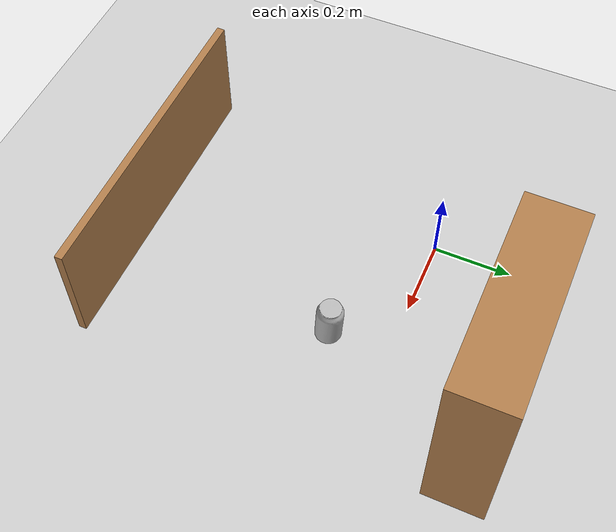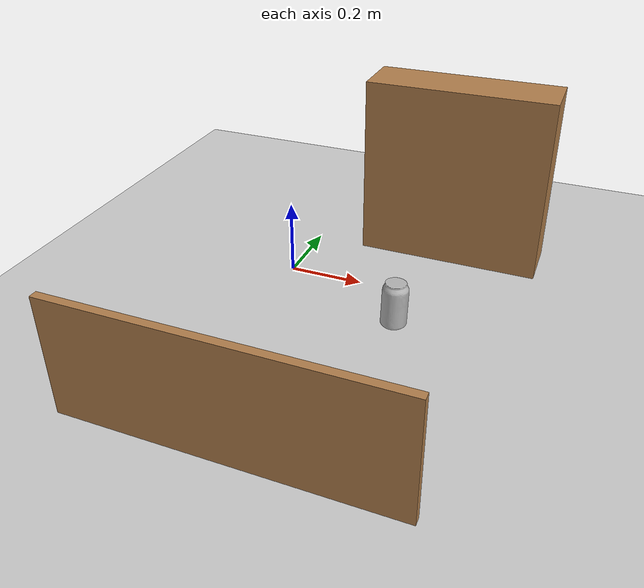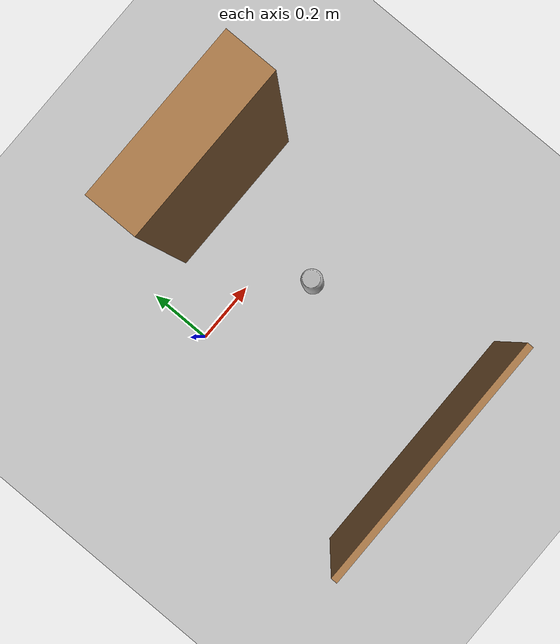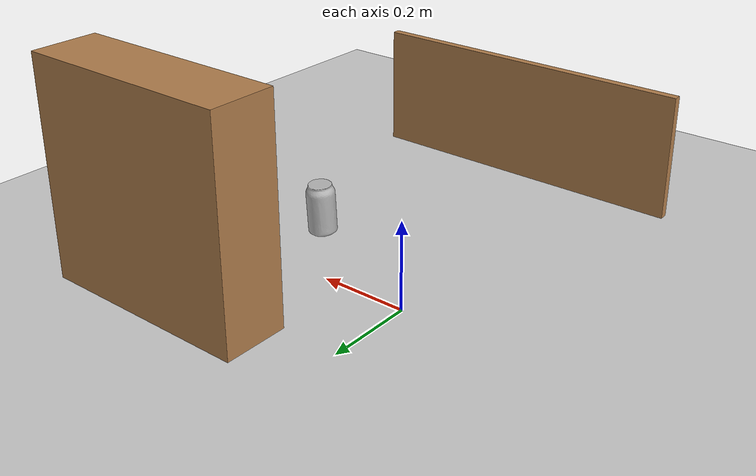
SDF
<sdf version="1.7">
 <world name="default">
  <light name="sun" type="directional">
   <pose>0 0 10 0 -0 0</pose>
   <diffuse>0.8 0.8 0.8 1</diffuse>
   <specular>0.2 0.2 0.2 1</specular>
   <attenuation>
    <range>1000</range>
    <constant>0.9</constant>
    <linear>0.01</linear>
    <quadratic>0.001</quadratic>
   </attenuation>
   <direction>-0.5 0.1 -0.9</direction>
   <spot><inner_angle>0</inner_angle><outer_angle>0</outer_angle><falloff>0</falloff></spot>
  </light>
  <model name="ground_plane">
   <static>1</static>
   <link name="link">
    <collision name="collision">
     <geometry><plane><normal>0 0 1</normal><size>100 100</size></plane></geometry>
     <surface>
      <contact><collide_bitmask>65535</collide_bitmask></contact>
      <friction><ode><mu>100</mu><mu2>50</mu2></ode></friction>
     </surface>
    </collision>
    <visual name="visual">
     <cast_shadows>0</cast_shadows>
     <geometry><plane><normal>0 0 1</normal><size>100 100</size></plane></geometry>
     <material>
      <script><uri>file://media/materials/scripts/gazebo.material</uri><name>Gazebo/Grey</name></script>
     </material>
    </visual>
   </link>
  </model>
  <gravity>0 0 -9.8</gravity>
  <magnetic_field>6e-06 2.3e-05 -4.2e-05</magnetic_field>
  <atmosphere type="adiabatic"/>
  <physics type="ode">
   <max_step_size>0.001</max_step_size>
   <real_time_factor>1</real_time_factor>
   <real_time_update_rate>1000</real_time_update_rate>
  </physics>
  <scene><ambient>0.4 0.4 0.4 1</ambient><background>0.7 0.7 0.7 1</background><shadows>1</shadows></scene>
  <spherical_coordinates>
   <surface_model>EARTH_WGS84</surface_model>
   <latitude_deg>0</latitude_deg>
   <longitude_deg>0</longitude_deg>
   <elevation>0</elevation>
   <heading_deg>0</heading_deg>
  </spherical_coordinates>
  <model name="wall08m">
   <pose>0.216851 0.083643 0 0 -0 0</pose>
   <link name="Wall_2">
    <collision name="Wall_2_Collision">
     <geometry><box><size>0.8 0.02 0.3</size></box></geometry>
     <pose>0 0 0.15 0 -0 0</pose>
    </collision>
    <visual name="Wall_2_Visual">
     <pose>0 0 0.15 0 -0 0</pose>
     <geometry><box><size>0.8 0.02 0.3</size></box></geometry>
     <material>
      <script><uri>file://media/materials/scripts/gazebo.material</uri><name>Gazebo/Wood</name></script>
      <ambient>1 1 1 1</ambient>
     </material>
     <meta><layer>0</layer></meta>
    </visual>
    <pose>-0.045 -0.795 0 0 -0 0</pose>
   </link>
   <static>1</static>
  </model>
  <model name="wall05m">
   <pose>0.38792 0.269131 0 0 -0 0</pose>
   <link name="Wall_0">
    <collision name="Wall_0_Collision">
     <geometry><box><size>0.5 0.15 0.5</size></box></geometry>
     <pose>0 0 0.25 0 -0 0</pose>
    </collision>
    <visual name="Wall_0_Visual">
     <pose>0 0 0.25 0 -0 0</pose>
     <geometry><box><size>0.5 0.15 0.5</size></box></geometry>
     <material>
      <script><uri>file://media/materials/scripts/gazebo.material</uri><name>Gazebo/Wood</name></script>
      <ambient>1 1 1 1</ambient>
     </material>
     <meta><layer>0</layer></meta>
    </visual>
   </link>
   <static>1</static>
  </model>
  <model name="coke_can">
   <link name="link">
    <inertial>
     <pose>0 0 0.06 0 -0 0</pose>
     <mass>0.39</mass>
     <inertia>
      <ixx>0.00055575</ixx>
      <ixy>0</ixy>
      <ixz>0</ixz>
      <iyy>0.00055575</iyy>
      <iyz>0</iyz>
      <izz>0.0001755</izz>
     </inertia>
    </inertial>
    <collision name="collision">
     <pose>0.003937 0.004724 -0.18 0 -0 0</pose>
     <geometry><mesh><uri>model://coke_can/meshes/coke_can.dae</uri></mesh></geometry>
     <surface>
      <friction><ode><mu>1</mu><mu2>1</mu2></ode></friction>
      <contact><ode><kp>1e+07</kp><kd>1</kd><min_depth>0.001</min_depth><max_vel>0.1</max_vel></ode></contact>
     </surface>
    </collision>
    <visual name="visual">
     <pose>0.003937 0.004724 -0.18 0 -0 0</pose>
     <geometry><mesh><uri>model://coke_can/meshes/coke_can.dae</uri></mesh></geometry>
    </visual>
   </link>
   <pose>0.345592 -0.153417 -0.002659 -0.055112 0.007741 -0.000483</pose>
  </model>
 </world>
</sdf>
